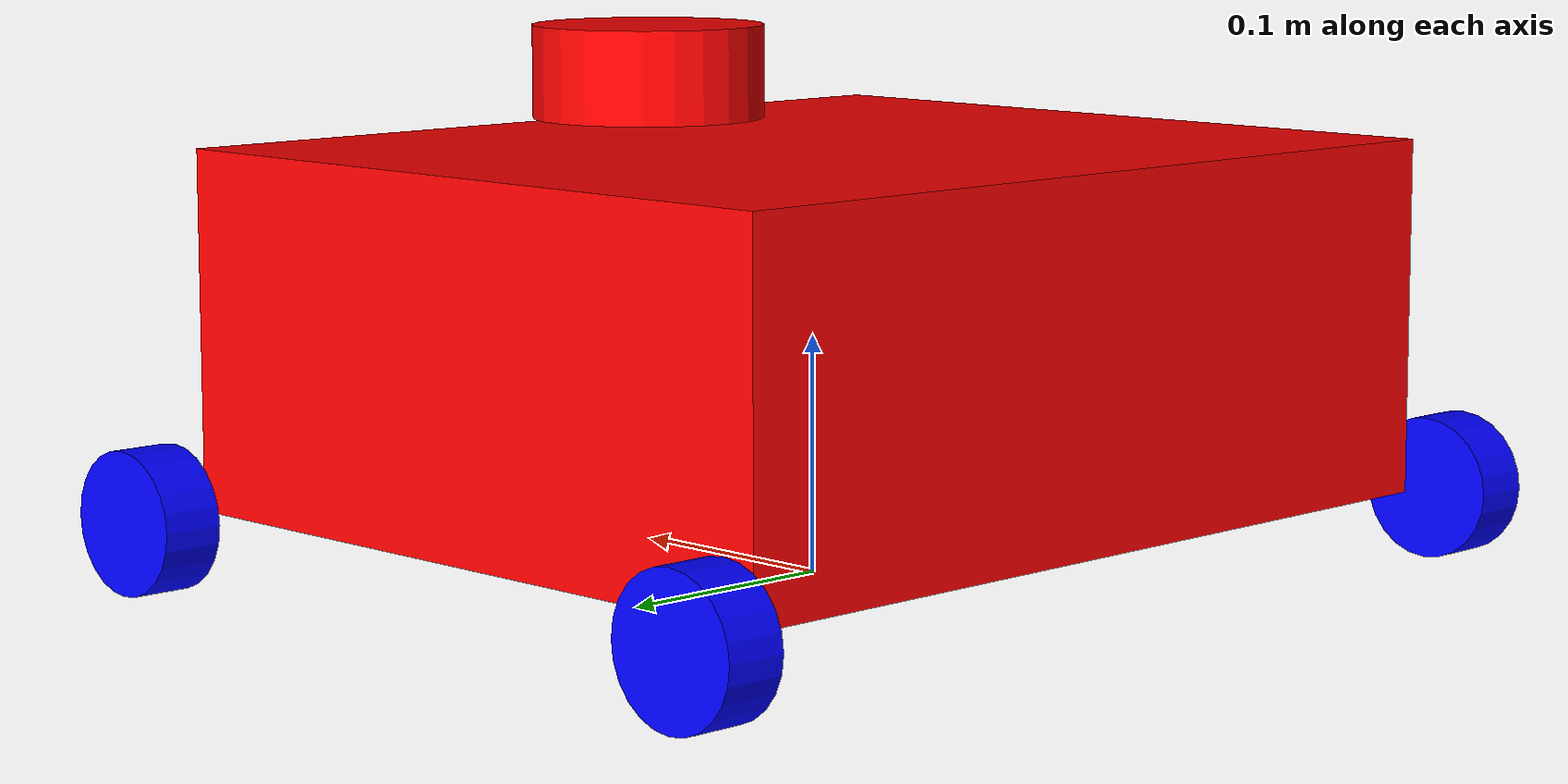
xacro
<?xml version="1.0"?>
<robot xmlns:xacro="http://www.ros.org/wiki/xacro" name="mobile_robot">

    <xacro:include filename="inertial_macros.xacro" />

    <xacro:include filename="robot_core.xacro" />

    <xacro:include filename="gazebo_control.xacro" />

    <xacro:include filename="lidar.xacro" />

</robot>

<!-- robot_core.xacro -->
<robot xmlns:xacro="http://www.ros.org/wiki/xacro" name="my_robot">

    <xacro:include filename="inertial_macros.xacro"/>
    <!-- Khung xe-->
    <xacro:property name="chassis_length" value="0.325"/>
    <xacro:property name="chassis_width"  value="0.385"/>
    <xacro:property name="chassis_height" value="0.15"/>
    <xacro:property name="chassis_mass"   value="2.0"/>
    <!-- Bánh xe-->
    <xacro:property name="wheel_radius" value="0.03"/>
    <xacro:property name="wheel_width"  value="0.026"/>
    <xacro:property name="wheel_mass"   value="0.2"/>

    <xacro:property name="wheel_track" value="0.44"/>
    <xacro:property name="wheel_base"  value="0.325"/>

    <material name="white"><color rgba="1 1 1 1" /></material>
    <material name="blue"><color rgba="0 0 1 1"/></material>
    <material name="red"><color rgba="1 0 0 1"/></material>

    <link name="base_link"></link>

    <joint name="chassis_joint" type="fixed">
        <parent link="base_link"/>
        <child link="chassis"/>
        <origin xyz="0 0 ${wheel_radius}"/>
    </joint>

    <link name="chassis">
        <visual>
            <origin xyz="0 0 ${chassis_height/2}"/>
            <geometry>
                <box size="${chassis_length} ${chassis_width} ${chassis_height}"/>
            </geometry>
            <material name="red"/> </visual>
        <collision>
            <origin xyz="0 0 ${chassis_height/2}"/>
            <geometry>
                <box size="${chassis_length} ${chassis_width} ${chassis_height}"/>
            </geometry>
        </collision>
        <xacro:inertial_box mass="${chassis_mass}" x="${chassis_length}" y="${chassis_width}" z="${chassis_height}">
            <origin xyz="0 0 ${chassis_height/2}" rpy="0 0 0"/>
        </xacro:inertial_box>
    </link>

    <gazebo reference="chassis">
        <material>Gazebo/Red</material>
    </gazebo>

    <xacro:macro name="wheel" params="prefix x_reflect y_reflect">
        <link name="${prefix}_wheel">
            <visual>
                <geometry>
                    <cylinder radius="${wheel_radius}" length="${wheel_width}"/>
                </geometry>
                <material name="blue"/>
            </visual>
            <collision>
                <geometry>
                    <cylinder radius="${wheel_radius}" length="${wheel_width}"/>
                </geometry>
            </collision>
            <xacro:inertial_cylinder mass="${wheel_mass}" length="${wheel_width}" radius="${wheel_radius}">
                <origin xyz="0 0 0" rpy="0 0 0"/>
            </xacro:inertial_cylinder>
        </link>

        <joint name="${prefix}_wheel_joint" type="continuous">
            <parent link="base_link"/>
            <child link="${prefix}_wheel"/>

            <origin xyz="${x_reflect * wheel_base / 2} ${y_reflect * wheel_track / 2} ${wheel_radius}"
                    rpy="-${pi/2} 0 0"/>
            <axis xyz="0 0 1"/>
        </joint>

        <gazebo reference="${prefix}_wheel">
            <material>Gazebo/Blue</material>
            <mu1>0.5</mu1>
            <mu2>0.5</mu2>
        </gazebo>
    </xacro:macro>

    <xacro:wheel prefix="front_left"  x_reflect="1"  y_reflect="1" />
    <xacro:wheel prefix="front_right" x_reflect="1"  y_reflect="-1" />

    <xacro:wheel prefix="rear_left"   x_reflect="-1" y_reflect="1" />
    <xacro:wheel prefix="rear_right"  x_reflect="-1" y_reflect="-1" />

</robot>

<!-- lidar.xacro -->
<robot xmlns:xacro="http://www.ros.org/wiki/xacro" >

    <joint name="laser_joint" type="fixed">
        <parent link="chassis"/>
        <child link="laser_frame"/>
        <origin xyz="0.1 0 0.175" rpy="0 0 0"/>
    </joint>

    <link name="laser_frame">
        <visual>
            <geometry>
                <cylinder radius="0.05" length="0.04"/>
            </geometry>
            <material name="red"/>
        </visual>
        <collision>
            <geometry>
                <cylinder radius="0.05" length="0.04"/>
            </geometry>
        </collision>
        <xacro:inertial_cylinder mass="0.1" length="0.04" radius="0.05">
            <origin xyz="0 0 0" rpy="0 0 0"/>
        </xacro:inertial_cylinder>
    </link>

    <gazebo reference="laser_frame">
        <material>Gazebo/Red</material>

        <sensor type="ray" name="head_hokuyo_sensor">
            <pose>0 0 0 0 0 0</pose>
            <visualize>true</visualize>
            <update_rate>10</update_rate> <ray>
                <scan>
                    <horizontal>
                        <samples>360</samples> <resolution>1</resolution>
                        <min_angle>-3.14159</min_angle>
                        <max_angle>3.14159</max_angle>
                    </horizontal>
                </scan>
                <range>
                    <min>0.10</min>
                    <max>12.0</max> <resolution>0.01</resolution>
                </range>
                <noise>
                    <type>gaussian</type>
                    <mean>0.0</mean>
                    <stddev>0.01</stddev>
                </noise>
            </ray>

            <plugin name="gazebo_ros_head_hokuyo_controller" filename="libgazebo_ros_laser.so">
                <topicName>/scan</topicName>
                <frameName>laser_frame</frameName>
            </plugin>
        </sensor>
    </gazebo>

</robot>
